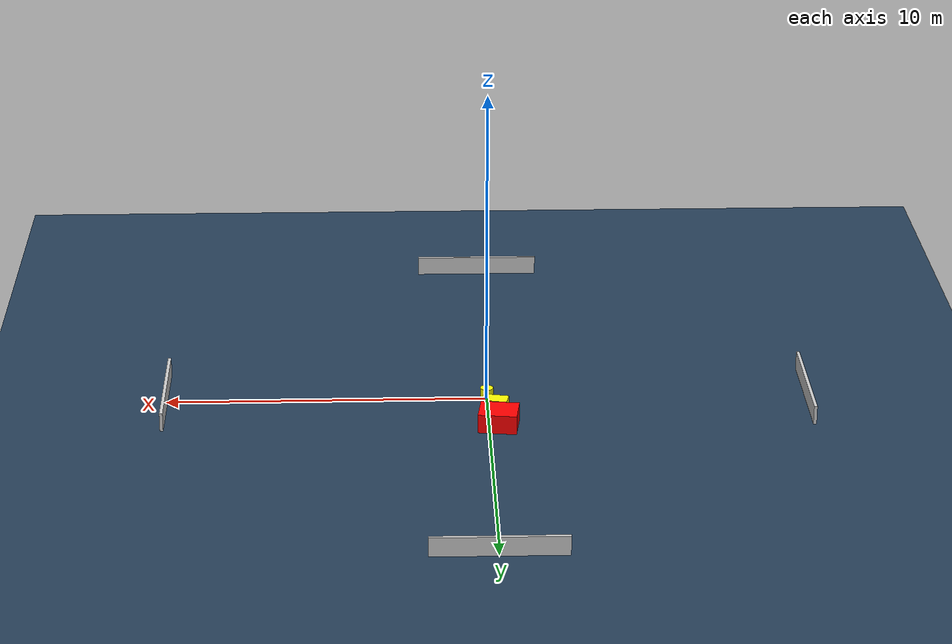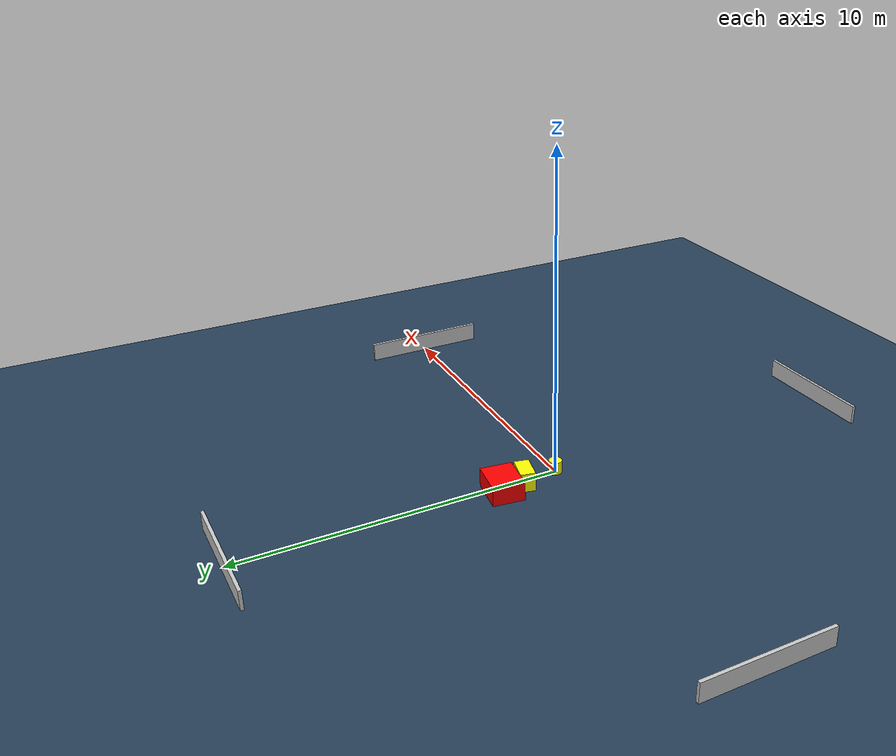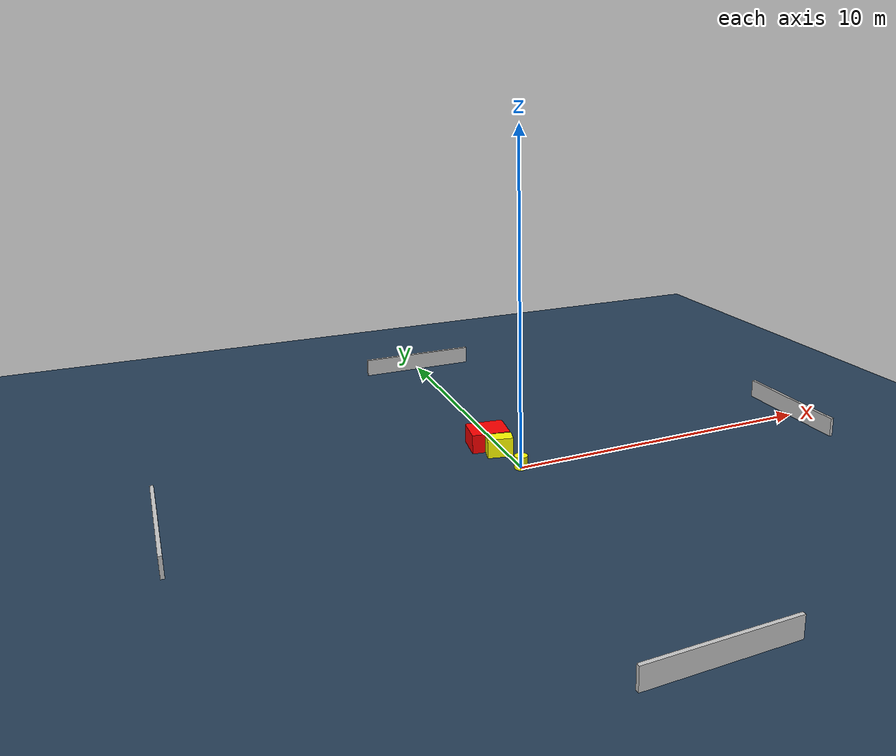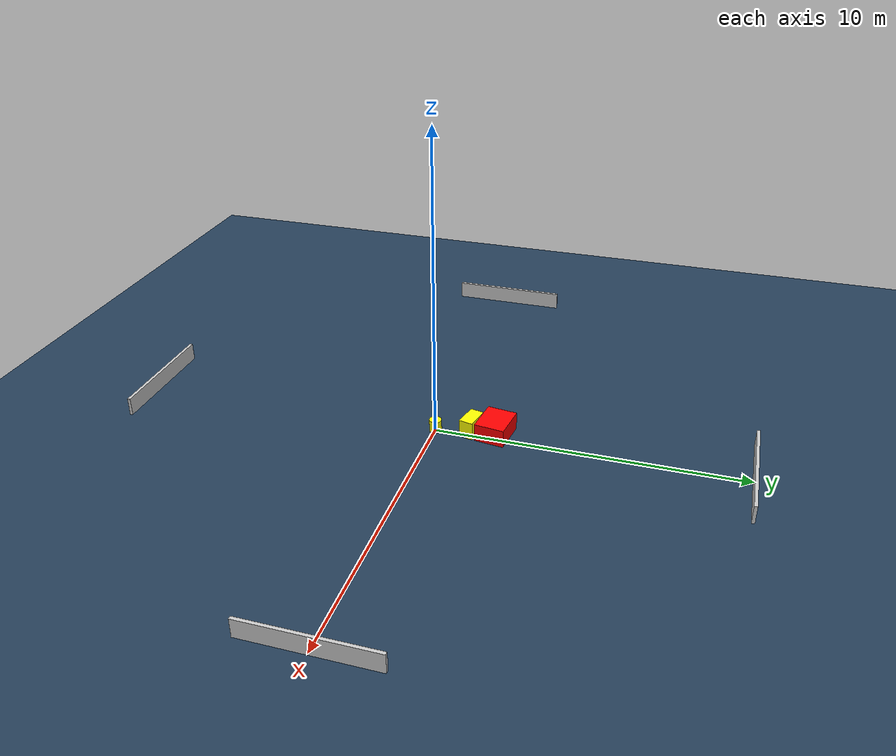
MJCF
<?xml version="1.0" ?>
<mujoco model="generated_environment">
  <option timestep="0.01" integrator="RK4" cone="elliptic"/>
  <default>
    <geom density="1"/>
  </default>
  <asset>
    <texture builtin="gradient" height="3072" name="skybox" rgb1="0.3 0.5 0.7" rgb2="0 0 0" type="skybox" width="512"/>
    <texture builtin="checker" height="300" name="groundplane" rgb1="0.2 0.3 0.4" rgb2="0.1 0.2 0.3" type="2d" width="300"/>
    <material name="groundplane" reflectance="0.2" texrepeat="5 5" texture="groundplane"/>
  </asset>
  <worldbody>
    <light dir="0 0 -1" directional="true" pos="0 0 1.5"/>
    <geom condim="3" friction="0.5 0.005 0.001" material="groundplane" name="floor" pos="0 0 0" size="0 0 0.05" type="plane"/>
    <body name="walls">
      <geom name="wall_1" condim="4" pos="-10.0 0.0 0.3" rgba="0.800000011920929 0.800000011920929 0.800000011920929 1.0" size="0.05 2.0 0.3" type="box"/>
      <geom name="wall_2" condim="4" pos="10.0 0.0 0.3" rgba="0.800000011920929 0.800000011920929 0.800000011920929 1.0" size="0.05 2.0 0.3" type="box"/>
      <geom name="wall_3" condim="4" pos="0.0 -10.0 0.3" rgba="0.800000011920929 0.800000011920929 0.800000011920929 1.0" size="2.0 0.05 0.3" type="box"/>
      <geom name="wall_4" condim="4" pos="0.0 10.0 0.3" rgba="0.800000011920929 0.800000011920929 0.800000011920929 1.0" size="2.0 0.05 0.3" type="box"/>
    </body>
    <body name="robot">
      <joint name="joint_x" type="slide" pos="0 0 0" axis="1 0 0"/>
      <joint name="joint_y" type="slide" pos="0 0 0" axis="0 1 0"/>
      <geom name="robot" type="cylinder" pos="0.0 0.0 0.2" size="0.2 0.2 0.0" mass="5.0" friction="1.0 0.005 0.0001" condim="4" rgba="1.0 1.0 0.0 1.0"/>
    </body>
    <body name="obstacle_1_movable">
      <geom name="obstacle_1_movable" condim="4" pos="-0.21164703284921238 1.1535716610115643 0.3" euler="0 0 167.34258776378533" friction="0.0 0.005 0.001" rgba="1.0 1.0 0.0 1.0" size="0.3982168916376415 0.2298228935950004 0.3" type="box" mass="0.1"/>
      <joint type="free"/>
    </body>
    <body name="obstacle_2_static">
      <geom name="obstacle_2_static" condim="4" pos="-0.29516490786472716 1.9301026052941188 0.3" euler="0 0 82.47749620045896" friction="0.0 0.005 0.001" rgba="1.0 0.0 0.0 1.0" size="0.4927029117141171 0.5950928906310393 0.3" type="box"/>
    </body>
  </worldbody>
  <actuator>
    <motor name="actuator_x" joint="joint_x" gear="1" ctrlrange="-1 1"/>
    <motor name="actuator_y" joint="joint_y" gear="1" ctrlrange="-1 1"/>
  </actuator>
</mujoco>
